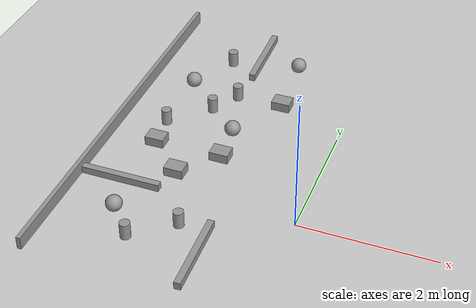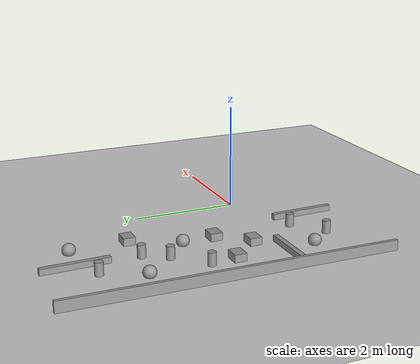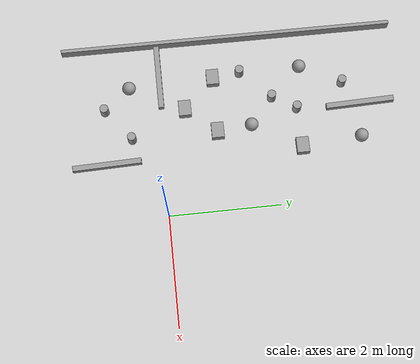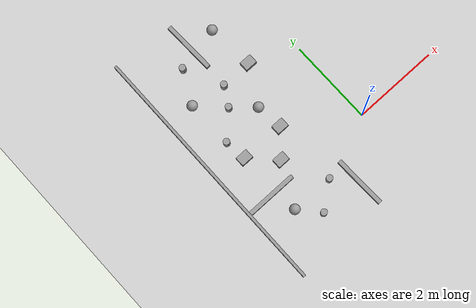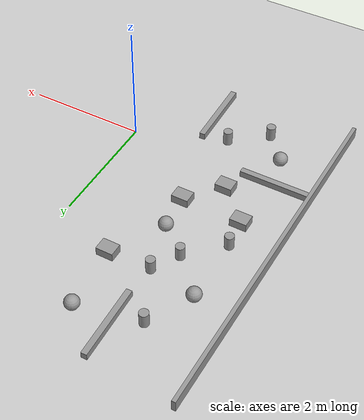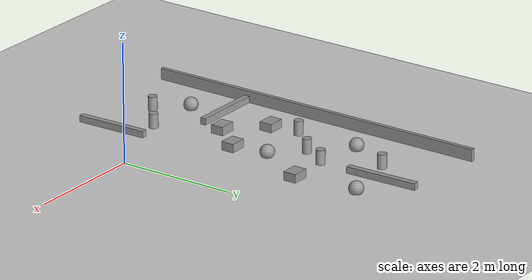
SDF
<sdf version="1.6">
 <world name="default">
  <model name="ground_plane">
   <static>1</static>
   <link name="link">
    <collision name="collision">
     <geometry><plane><normal>0 0 1</normal><size>100 100</size></plane></geometry>
     <surface>
      <contact><collide_bitmask>65535</collide_bitmask></contact>
      <friction><ode><mu>100</mu><mu2>50</mu2></ode></friction>
     </surface>
    </collision>
    <visual name="visual">
     <cast_shadows>0</cast_shadows>
     <geometry><plane><normal>0 0 1</normal><size>100 100</size></plane></geometry>
     <material>
      <script><uri>file://media/materials/scripts/gazebo.material</uri><name>Gazebo/Grey</name></script>
     </material>
    </visual>
   </link>
  </model>
  <model name="wall_clone_clone">
   <link name="wall::link">
    <inertial>
     <mass>1</mass>
     <inertia>
      <ixx>0.166667</ixx>
      <ixy>0</ixy>
      <ixz>0</ixz>
      <iyy>0.166667</iyy>
      <iyz>0</iyz>
      <izz>0.166667</izz>
     </inertia>
    </inertial>
    <visual name="visual">
     <geometry><box><size>6.06185 0.064282 0.203764</size></box></geometry>
     <material>
      <script><name>Gazebo/Grey</name><uri>file://media/materials/scripts/gazebo.material</uri></script>
     </material>
    </visual>
    <collision name="collision">
     <geometry><box><size>6.06185 0.064282 0.203764</size></box></geometry>
     <surface>
      <friction>
       <ode><mu>1</mu><mu2>1</mu2><fdir1>0 0 0</fdir1><slip1>0</slip1><slip2>0</slip2></ode>
       <torsional>
        <coefficient>1</coefficient>
        <patch_radius>0</patch_radius>
        <surface_radius>0</surface_radius>
        <use_patch_radius>1</use_patch_radius>
        <ode><slip>0</slip></ode>
       </torsional>
      </friction>
      <bounce><restitution_coefficient>0</restitution_coefficient><threshold>1e+06</threshold></bounce>
      <contact>
       <collide_without_contact>0</collide_without_contact>
       <collide_without_contact_bitmask>1</collide_without_contact_bitmask>
       <collide_bitmask>1</collide_bitmask>
       <ode>
        <soft_cfm>0</soft_cfm>
        <soft_erp>0.2</soft_erp>
        <kp>1e+13</kp>
        <kd>1</kd>
        <max_vel>0.01</max_vel>
        <min_depth>0</min_depth>
       </ode>
       <bullet>
        <split_impulse>1</split_impulse>
        <split_impulse_penetration_threshold>-0.01</split_impulse_penetration_threshold>
        <soft_cfm>0</soft_cfm>
        <soft_erp>0.2</soft_erp>
        <kp>1e+13</kp>
        <kd>1</kd>
       </bullet>
      </contact>
     </surface>
    </collision>
   </link>
   <static>1</static>
   <pose>-3.24153 1.32469 0.093386 -0.000616 -0.002779 1.56641</pose>
  </model>
  <model name="square_obstacle_clone_4_clone_0">
   <link name="link">
    <inertial>
     <mass>1</mass>
     <inertia>
      <ixx>0.166667</ixx>
      <ixy>0</ixy>
      <ixz>0</ixz>
      <iyy>0.166667</iyy>
      <iyz>0</iyz>
      <izz>0.166667</izz>
     </inertia>
    </inertial>
    <visual name="visual">
     <geometry><box><size>0.287479 0.224054 0.165392</size></box></geometry>
     <material>
      <script><name>Gazebo/Grey</name><uri>file://media/materials/scripts/gazebo.material</uri></script>
     </material>
    </visual>
    <collision name="collision">
     <geometry><box><size>0.287479 0.224054 0.165392</size></box></geometry>
     <surface>
      <friction>
       <ode><mu>1</mu><mu2>1</mu2><fdir1>0 0 0</fdir1><slip1>0</slip1><slip2>0</slip2></ode>
       <torsional>
        <coefficient>1</coefficient>
        <patch_radius>0</patch_radius>
        <surface_radius>0</surface_radius>
        <use_patch_radius>1</use_patch_radius>
        <ode><slip>0</slip></ode>
       </torsional>
      </friction>
      <bounce><restitution_coefficient>0</restitution_coefficient><threshold>1e+06</threshold></bounce>
      <contact>
       <collide_without_contact>0</collide_without_contact>
       <collide_without_contact_bitmask>1</collide_without_contact_bitmask>
       <collide_bitmask>1</collide_bitmask>
       <ode>
        <soft_cfm>0</soft_cfm>
        <soft_erp>0.2</soft_erp>
        <kp>1e+13</kp>
        <kd>1</kd>
        <max_vel>0.01</max_vel>
        <min_depth>0</min_depth>
       </ode>
       <bullet>
        <split_impulse>1</split_impulse>
        <split_impulse_penetration_threshold>-0.01</split_impulse_penetration_threshold>
        <soft_cfm>0</soft_cfm>
        <soft_erp>0.2</soft_erp>
        <kp>1e+13</kp>
        <kd>1</kd>
       </bullet>
      </contact>
     </surface>
    </collision>
   </link>
   <static>1</static>
   <pose>-1.04193 2.50349 0.055043 0 -0 0</pose>
  </model>
  <model name="square_obstacle_clone_4_clone_1">
   <link name="link">
    <inertial>
     <mass>1</mass>
     <inertia>
      <ixx>0.166667</ixx>
      <ixy>0</ixy>
      <ixz>0</ixz>
      <iyy>0.166667</iyy>
      <iyz>0</iyz>
      <izz>0.166667</izz>
     </inertia>
    </inertial>
    <visual name="visual">
     <geometry><box><size>0.287479 0.224054 0.165392</size></box></geometry>
     <material>
      <script><name>Gazebo/Grey</name><uri>file://media/materials/scripts/gazebo.material</uri></script>
     </material>
    </visual>
    <collision name="collision">
     <geometry><box><size>0.287479 0.224054 0.165392</size></box></geometry>
     <surface>
      <friction>
       <ode><mu>1</mu><mu2>1</mu2><fdir1>0 0 0</fdir1><slip1>0</slip1><slip2>0</slip2></ode>
       <torsional>
        <coefficient>1</coefficient>
        <patch_radius>0</patch_radius>
        <surface_radius>0</surface_radius>
        <use_patch_radius>1</use_patch_radius>
        <ode><slip>0</slip></ode>
       </torsional>
      </friction>
      <bounce><restitution_coefficient>0</restitution_coefficient><threshold>1e+06</threshold></bounce>
      <contact>
       <collide_without_contact>0</collide_without_contact>
       <collide_without_contact_bitmask>1</collide_without_contact_bitmask>
       <collide_bitmask>1</collide_bitmask>
       <ode>
        <soft_cfm>0</soft_cfm>
        <soft_erp>0.2</soft_erp>
        <kp>1e+13</kp>
        <kd>1</kd>
        <max_vel>0.01</max_vel>
        <min_depth>0</min_depth>
       </ode>
       <bullet>
        <split_impulse>1</split_impulse>
        <split_impulse_penetration_threshold>-0.01</split_impulse_penetration_threshold>
        <soft_cfm>0</soft_cfm>
        <soft_erp>0.2</soft_erp>
        <kp>1e+13</kp>
        <kd>1</kd>
       </bullet>
      </contact>
     </surface>
    </collision>
   </link>
   <static>1</static>
   <pose>-1.95288 0.456535 0.055043 0 -0 0</pose>
  </model>
  <model name="sphere_obstacles_clone_2_clone_0">
   <link name="sphere_obstacles_clone_2::link">
    <inertial>
     <mass>1</mass>
     <inertia><ixx>0.1</ixx><ixy>0</ixy><ixz>0</ixz><iyy>0.1</iyy><iyz>0</iyz><izz>0.1</izz></inertia>
    </inertial>
    <visual name="visual">
     <geometry><sphere><radius>0.121078</radius></sphere></geometry>
     <material>
      <script><name>Gazebo/Grey</name><uri>file://media/materials/scripts/gazebo.material</uri></script>
     </material>
    </visual>
    <collision name="collision">
     <geometry><sphere><radius>0.121078</radius></sphere></geometry>
     <surface>
      <friction>
       <ode><mu>1</mu><mu2>1</mu2><fdir1>0 0 0</fdir1><slip1>0</slip1><slip2>0</slip2></ode>
       <torsional>
        <coefficient>1</coefficient>
        <patch_radius>0</patch_radius>
        <surface_radius>0</surface_radius>
        <use_patch_radius>1</use_patch_radius>
        <ode><slip>0</slip></ode>
       </torsional>
      </friction>
      <bounce><restitution_coefficient>0</restitution_coefficient><threshold>1e+06</threshold></bounce>
      <contact>
       <collide_without_contact>0</collide_without_contact>
       <collide_without_contact_bitmask>1</collide_without_contact_bitmask>
       <collide_bitmask>1</collide_bitmask>
       <ode>
        <soft_cfm>0</soft_cfm>
        <soft_erp>0.2</soft_erp>
        <kp>1e+13</kp>
        <kd>1</kd>
        <max_vel>0.01</max_vel>
        <min_depth>0</min_depth>
       </ode>
       <bullet>
        <split_impulse>1</split_impulse>
        <split_impulse_penetration_threshold>-0.01</split_impulse_penetration_threshold>
        <soft_cfm>0</soft_cfm>
        <soft_erp>0.2</soft_erp>
        <kp>1e+13</kp>
        <kd>1</kd>
       </bullet>
      </contact>
     </surface>
    </collision>
   </link>
   <static>1</static>
   <pose>-2.56968 2.61576 0.0728 0 -0 0</pose>
  </model>
  <model name="sphere_obstacles_clone_2_clone_4">
   <link name="sphere_obstacles_clone_2::link">
    <inertial>
     <mass>1</mass>
     <inertia><ixx>0.1</ixx><ixy>0</ixy><ixz>0</ixz><iyy>0.1</iyy><iyz>0</iyz><izz>0.1</izz></inertia>
    </inertial>
    <visual name="visual">
     <geometry><sphere><radius>0.121078</radius></sphere></geometry>
     <material>
      <script><name>Gazebo/Grey</name><uri>file://media/materials/scripts/gazebo.material</uri></script>
     </material>
    </visual>
    <collision name="collision">
     <geometry><sphere><radius>0.121078</radius></sphere></geometry>
     <surface>
      <friction>
       <ode><mu>1</mu><mu2>1</mu2><fdir1>0 0 0</fdir1><slip1>0</slip1><slip2>0</slip2></ode>
       <torsional>
        <coefficient>1</coefficient>
        <patch_radius>0</patch_radius>
        <surface_radius>0</surface_radius>
        <use_patch_radius>1</use_patch_radius>
        <ode><slip>0</slip></ode>
       </torsional>
      </friction>
      <bounce><restitution_coefficient>0</restitution_coefficient><threshold>1e+06</threshold></bounce>
      <contact>
       <collide_without_contact>0</collide_without_contact>
       <collide_without_contact_bitmask>1</collide_without_contact_bitmask>
       <collide_bitmask>1</collide_bitmask>
       <ode>
        <soft_cfm>0</soft_cfm>
        <soft_erp>0.2</soft_erp>
        <kp>1e+13</kp>
        <kd>1</kd>
        <max_vel>0.01</max_vel>
        <min_depth>0</min_depth>
       </ode>
       <bullet>
        <split_impulse>1</split_impulse>
        <split_impulse_penetration_threshold>-0.01</split_impulse_penetration_threshold>
        <soft_cfm>0</soft_cfm>
        <soft_erp>0.2</soft_erp>
        <kp>1e+13</kp>
        <kd>1</kd>
       </bullet>
      </contact>
     </surface>
    </collision>
   </link>
   <static>1</static>
   <pose>-2.4503 -0.52455 0.0728 0 -0 0</pose>
  </model>
  <model name="sphere_obstacles_clone_2_clone_clone">
   <link name="sphere_obstacles_clone_2::link">
    <inertial>
     <mass>1</mass>
     <inertia><ixx>0.1</ixx><ixy>0</ixy><ixz>0</ixz><iyy>0.1</iyy><iyz>0</iyz><izz>0.1</izz></inertia>
    </inertial>
    <visual name="visual">
     <geometry><sphere><radius>0.121078</radius></sphere></geometry>
     <material>
      <script><name>Gazebo/Grey</name><uri>file://media/materials/scripts/gazebo.material</uri></script>
     </material>
    </visual>
    <collision name="collision">
     <geometry><sphere><radius>0.121078</radius></sphere></geometry>
     <surface>
      <friction>
       <ode><mu>1</mu><mu2>1</mu2><fdir1>0 0 0</fdir1><slip1>0</slip1><slip2>0</slip2></ode>
       <torsional>
        <coefficient>1</coefficient>
        <patch_radius>0</patch_radius>
        <surface_radius>0</surface_radius>
        <use_patch_radius>1</use_patch_radius>
        <ode><slip>0</slip></ode>
       </torsional>
      </friction>
      <bounce><restitution_coefficient>0</restitution_coefficient><threshold>1e+06</threshold></bounce>
      <contact>
       <collide_without_contact>0</collide_without_contact>
       <collide_without_contact_bitmask>1</collide_without_contact_bitmask>
       <collide_bitmask>1</collide_bitmask>
       <ode>
        <soft_cfm>0</soft_cfm>
        <soft_erp>0.2</soft_erp>
        <kp>1e+13</kp>
        <kd>1</kd>
        <max_vel>0.01</max_vel>
        <min_depth>0</min_depth>
       </ode>
       <bullet>
        <split_impulse>1</split_impulse>
        <split_impulse_penetration_threshold>-0.01</split_impulse_penetration_threshold>
        <soft_cfm>0</soft_cfm>
        <soft_erp>0.2</soft_erp>
        <kp>1e+13</kp>
        <kd>1</kd>
       </bullet>
      </contact>
     </surface>
    </collision>
   </link>
   <static>1</static>
   <pose>-1.12901 3.58744 0.0728 0 -0 0</pose>
  </model>
  <model name="square_obstacle_clone_4_clone_clone_0">
   <link name="link">
    <inertial>
     <mass>1</mass>
     <inertia>
      <ixx>0.166667</ixx>
      <ixy>0</ixy>
      <ixz>0</ixz>
      <iyy>0.166667</iyy>
      <iyz>0</iyz>
      <izz>0.166667</izz>
     </inertia>
    </inertial>
    <visual name="visual">
     <geometry><box><size>0.287479 0.224054 0.165392</size></box></geometry>
     <material>
      <script><name>Gazebo/Grey</name><uri>file://media/materials/scripts/gazebo.material</uri></script>
     </material>
    </visual>
    <collision name="collision">
     <geometry><box><size>0.287479 0.224054 0.165392</size></box></geometry>
     <surface>
      <friction>
       <ode><mu>1</mu><mu2>1</mu2><fdir1>0 0 0</fdir1><slip1>0</slip1><slip2>0</slip2></ode>
       <torsional>
        <coefficient>1</coefficient>
        <patch_radius>0</patch_radius>
        <surface_radius>0</surface_radius>
        <use_patch_radius>1</use_patch_radius>
        <ode><slip>0</slip></ode>
       </torsional>
      </friction>
      <bounce><restitution_coefficient>0</restitution_coefficient><threshold>1e+06</threshold></bounce>
      <contact>
       <collide_without_contact>0</collide_without_contact>
       <collide_without_contact_bitmask>1</collide_without_contact_bitmask>
       <collide_bitmask>1</collide_bitmask>
       <ode>
        <soft_cfm>0</soft_cfm>
        <soft_erp>0.2</soft_erp>
        <kp>1e+13</kp>
        <kd>1</kd>
        <max_vel>0.01</max_vel>
        <min_depth>0</min_depth>
       </ode>
       <bullet>
        <split_impulse>1</split_impulse>
        <split_impulse_penetration_threshold>-0.01</split_impulse_penetration_threshold>
        <soft_cfm>0</soft_cfm>
        <soft_erp>0.2</soft_erp>
        <kp>1e+13</kp>
        <kd>1</kd>
       </bullet>
      </contact>
     </surface>
    </collision>
   </link>
   <static>1</static>
   <pose>-1.47571 1.0085 0.055043 0 -0 0</pose>
  </model>
  <model name="cylinder_obstacles_clone">
   <link name="link">
    <inertial>
     <mass>1</mass>
     <inertia><ixx>0.145833</ixx><ixy>0</ixy><ixz>0</ixz><iyy>0.145833</iyy><iyz>0</iyz><izz>0.125</izz></inertia>
    </inertial>
    <visual name="visual">
     <geometry><cylinder><radius>0.076548</radius><length>0.26008</length></cylinder></geometry>
     <material>
      <script><name>Gazebo/Grey</name><uri>file://media/materials/scripts/gazebo.material</uri></script>
     </material>
    </visual>
    <collision name="collision">
     <geometry><cylinder><radius>0.076548</radius><length>0.26008</length></cylinder></geometry>
     <surface>
      <friction>
       <ode><mu>1</mu><mu2>1</mu2><fdir1>0 0 0</fdir1><slip1>0</slip1><slip2>0</slip2></ode>
       <torsional>
        <coefficient>1</coefficient>
        <patch_radius>0</patch_radius>
        <surface_radius>0</surface_radius>
        <use_patch_radius>1</use_patch_radius>
        <ode><slip>0</slip></ode>
       </torsional>
      </friction>
      <bounce><restitution_coefficient>0</restitution_coefficient><threshold>1e+06</threshold></bounce>
      <contact>
       <collide_without_contact>0</collide_without_contact>
       <collide_without_contact_bitmask>1</collide_without_contact_bitmask>
       <collide_bitmask>1</collide_bitmask>
       <ode>
        <soft_cfm>0</soft_cfm>
        <soft_erp>0.2</soft_erp>
        <kp>1e+13</kp>
        <kd>1</kd>
        <max_vel>0.01</max_vel>
        <min_depth>0</min_depth>
       </ode>
       <bullet>
        <split_impulse>1</split_impulse>
        <split_impulse_penetration_threshold>-0.01</split_impulse_penetration_threshold>
        <soft_cfm>0</soft_cfm>
        <soft_erp>0.2</soft_erp>
        <kp>1e+13</kp>
        <kd>1</kd>
       </bullet>
      </contact>
     </surface>
    </collision>
   </link>
   <static>1</static>
   <pose>-1.4723 -0.541147 0.110032 0 -0 0</pose>
  </model>
  <model name="cylinder_obstacles_clone_1">
   <link name="link">
    <inertial>
     <mass>1</mass>
     <inertia><ixx>0.145833</ixx><ixy>0</ixy><ixz>0</ixz><iyy>0.145833</iyy><iyz>0</iyz><izz>0.125</izz></inertia>
    </inertial>
    <visual name="visual">
     <geometry><cylinder><radius>0.076548</radius><length>0.26008</length></cylinder></geometry>
     <material>
      <script><name>Gazebo/Grey</name><uri>file://media/materials/scripts/gazebo.material</uri></script>
     </material>
    </visual>
    <collision name="collision">
     <geometry><cylinder><radius>0.076548</radius><length>0.26008</length></cylinder></geometry>
     <surface>
      <friction>
       <ode><mu>1</mu><mu2>1</mu2><fdir1>0 0 0</fdir1><slip1>0</slip1><slip2>0</slip2></ode>
       <torsional>
        <coefficient>1</coefficient>
        <patch_radius>0</patch_radius>
        <surface_radius>0</surface_radius>
        <use_patch_radius>1</use_patch_radius>
        <ode><slip>0</slip></ode>
       </torsional>
      </friction>
      <bounce><restitution_coefficient>0</restitution_coefficient><threshold>1e+06</threshold></bounce>
      <contact>
       <collide_without_contact>0</collide_without_contact>
       <collide_without_contact_bitmask>1</collide_without_contact_bitmask>
       <collide_bitmask>1</collide_bitmask>
       <ode>
        <soft_cfm>0</soft_cfm>
        <soft_erp>0.2</soft_erp>
        <kp>1e+13</kp>
        <kd>1</kd>
        <max_vel>0.01</max_vel>
        <min_depth>0</min_depth>
       </ode>
       <bullet>
        <split_impulse>1</split_impulse>
        <split_impulse_penetration_threshold>-0.01</split_impulse_penetration_threshold>
        <soft_cfm>0</soft_cfm>
        <soft_erp>0.2</soft_erp>
        <kp>1e+13</kp>
        <kd>1</kd>
       </bullet>
      </contact>
     </surface>
    </collision>
   </link>
   <static>1</static>
   <pose>-2.05021 -0.994696 0.110032 0 -0 0</pose>
  </model>
  <model name="cylinder_obstacles_clone_2">
   <link name="link">
    <inertial>
     <mass>1</mass>
     <inertia><ixx>0.145833</ixx><ixy>0</ixy><ixz>0</ixz><iyy>0.145833</iyy><iyz>0</iyz><izz>0.125</izz></inertia>
    </inertial>
    <visual name="visual">
     <geometry><cylinder><radius>0.076548</radius><length>0.26008</length></cylinder></geometry>
     <material>
      <script><name>Gazebo/Grey</name><uri>file://media/materials/scripts/gazebo.material</uri></script>
     </material>
    </visual>
    <collision name="collision">
     <geometry><cylinder><radius>0.076548</radius><length>0.26008</length></cylinder></geometry>
     <surface>
      <friction>
       <ode><mu>1</mu><mu2>1</mu2><fdir1>0 0 0</fdir1><slip1>0</slip1><slip2>0</slip2></ode>
       <torsional>
        <coefficient>1</coefficient>
        <patch_radius>0</patch_radius>
        <surface_radius>0</surface_radius>
        <use_patch_radius>1</use_patch_radius>
        <ode><slip>0</slip></ode>
       </torsional>
      </friction>
      <bounce><restitution_coefficient>0</restitution_coefficient><threshold>1e+06</threshold></bounce>
      <contact>
       <collide_without_contact>0</collide_without_contact>
       <collide_without_contact_bitmask>1</collide_without_contact_bitmask>
       <collide_bitmask>1</collide_bitmask>
       <ode>
        <soft_cfm>0</soft_cfm>
        <soft_erp>0.2</soft_erp>
        <kp>1e+13</kp>
        <kd>1</kd>
        <max_vel>0.01</max_vel>
        <min_depth>0</min_depth>
       </ode>
       <bullet>
        <split_impulse>1</split_impulse>
        <split_impulse_penetration_threshold>-0.01</split_impulse_penetration_threshold>
        <soft_cfm>0</soft_cfm>
        <soft_erp>0.2</soft_erp>
        <kp>1e+13</kp>
        <kd>1</kd>
       </bullet>
      </contact>
     </surface>
    </collision>
   </link>
   <static>1</static>
   <pose>-2.0214 2.04818 0.110032 0 -0 0</pose>
  </model>
  <model name="cylinder_obstacles_clone_5">
   <link name="link">
    <inertial>
     <mass>1</mass>
     <inertia><ixx>0.145833</ixx><ixy>0</ixy><ixz>0</ixz><iyy>0.145833</iyy><iyz>0</iyz><izz>0.125</izz></inertia>
    </inertial>
    <visual name="visual">
     <geometry><cylinder><radius>0.076548</radius><length>0.26008</length></cylinder></geometry>
     <material>
      <script><name>Gazebo/Grey</name><uri>file://media/materials/scripts/gazebo.material</uri></script>
     </material>
    </visual>
    <collision name="collision">
     <geometry><cylinder><radius>0.076548</radius><length>0.26008</length></cylinder></geometry>
     <surface>
      <friction>
       <ode><mu>1</mu><mu2>1</mu2><fdir1>0 0 0</fdir1><slip1>0</slip1><slip2>0</slip2></ode>
       <torsional>
        <coefficient>1</coefficient>
        <patch_radius>0</patch_radius>
        <surface_radius>0</surface_radius>
        <use_patch_radius>1</use_patch_radius>
        <ode><slip>0</slip></ode>
       </torsional>
      </friction>
      <bounce><restitution_coefficient>0</restitution_coefficient><threshold>1e+06</threshold></bounce>
      <contact>
       <collide_without_contact>0</collide_without_contact>
       <collide_without_contact_bitmask>1</collide_without_contact_bitmask>
       <collide_bitmask>1</collide_bitmask>
       <ode>
        <soft_cfm>0</soft_cfm>
        <soft_erp>0.2</soft_erp>
        <kp>1e+13</kp>
        <kd>1</kd>
        <max_vel>0.01</max_vel>
        <min_depth>0</min_depth>
       </ode>
       <bullet>
        <split_impulse>1</split_impulse>
        <split_impulse_penetration_threshold>-0.01</split_impulse_penetration_threshold>
        <soft_cfm>0</soft_cfm>
        <soft_erp>0.2</soft_erp>
        <kp>1e+13</kp>
        <kd>1</kd>
       </bullet>
      </contact>
     </surface>
    </collision>
   </link>
   <static>1</static>
   <pose>-2.56056 1.51104 0.110032 0 -0 0</pose>
  </model>
  <model name="cylinder_obstacles_clone_6">
   <link name="link">
    <inertial>
     <mass>1</mass>
     <inertia><ixx>0.145833</ixx><ixy>0</ixy><ixz>0</ixz><iyy>0.145833</iyy><iyz>0</iyz><izz>0.125</izz></inertia>
    </inertial>
    <visual name="visual">
     <geometry><cylinder><radius>0.076548</radius><length>0.26008</length></cylinder></geometry>
     <material>
      <script><name>Gazebo/Grey</name><uri>file://media/materials/scripts/gazebo.material</uri></script>
     </material>
    </visual>
    <collision name="collision">
     <geometry><cylinder><radius>0.076548</radius><length>0.26008</length></cylinder></geometry>
     <surface>
      <friction>
       <ode><mu>1</mu><mu2>1</mu2><fdir1>0 0 0</fdir1><slip1>0</slip1><slip2>0</slip2></ode>
       <torsional>
        <coefficient>1</coefficient>
        <patch_radius>0</patch_radius>
        <surface_radius>0</surface_radius>
        <use_patch_radius>1</use_patch_radius>
        <ode><slip>0</slip></ode>
       </torsional>
      </friction>
      <bounce><restitution_coefficient>0</restitution_coefficient><threshold>1e+06</threshold></bounce>
      <contact>
       <collide_without_contact>0</collide_without_contact>
       <collide_without_contact_bitmask>1</collide_without_contact_bitmask>
       <collide_bitmask>1</collide_bitmask>
       <ode>
        <soft_cfm>0</soft_cfm>
        <soft_erp>0.2</soft_erp>
        <kp>1e+13</kp>
        <kd>1</kd>
        <max_vel>0.01</max_vel>
        <min_depth>0</min_depth>
       </ode>
       <bullet>
        <split_impulse>1</split_impulse>
        <split_impulse_penetration_threshold>-0.01</split_impulse_penetration_threshold>
        <soft_cfm>0</soft_cfm>
        <soft_erp>0.2</soft_erp>
        <kp>1e+13</kp>
        <kd>1</kd>
       </bullet>
      </contact>
     </surface>
    </collision>
   </link>
   <static>1</static>
   <pose>-2.18325 3.35418 0.110032 0 -0 0</pose>
  </model>
  <model name="long_obstacle_clone">
   <link name="link">
    <inertial>
     <mass>1</mass>
     <inertia>
      <ixx>0.166667</ixx>
      <ixy>0</ixy>
      <ixz>0</ixz>
      <iyy>0.166667</iyy>
      <iyz>0</iyz>
      <izz>0.166667</izz>
     </inertia>
    </inertial>
    <visual name="visual">
     <geometry><box><size>1.23514 0.097707 0.121659</size></box></geometry>
     <material>
      <script><name>Gazebo/Grey</name><uri>file://media/materials/scripts/gazebo.material</uri></script>
     </material>
    </visual>
    <collision name="collision">
     <geometry><box><size>1.23514 0.097707 0.121659</size></box></geometry>
     <surface>
      <friction>
       <ode><mu>1</mu><mu2>1</mu2><fdir1>0 0 0</fdir1><slip1>0</slip1><slip2>0</slip2></ode>
       <torsional>
        <coefficient>1</coefficient>
        <patch_radius>0</patch_radius>
        <surface_radius>0</surface_radius>
        <use_patch_radius>1</use_patch_radius>
        <ode><slip>0</slip></ode>
       </torsional>
      </friction>
      <bounce><restitution_coefficient>0</restitution_coefficient><threshold>1e+06</threshold></bounce>
      <contact>
       <collide_without_contact>0</collide_without_contact>
       <collide_without_contact_bitmask>1</collide_without_contact_bitmask>
       <collide_bitmask>1</collide_bitmask>
       <ode>
        <soft_cfm>0</soft_cfm>
        <soft_erp>0.2</soft_erp>
        <kp>1e+13</kp>
        <kd>1</kd>
        <max_vel>0.01</max_vel>
        <min_depth>0</min_depth>
       </ode>
       <bullet>
        <split_impulse>1</split_impulse>
        <split_impulse_penetration_threshold>-0.01</split_impulse_penetration_threshold>
        <soft_cfm>0</soft_cfm>
        <soft_erp>0.2</soft_erp>
        <kp>1e+13</kp>
        <kd>1</kd>
       </bullet>
      </contact>
     </surface>
    </collision>
   </link>
   <static>1</static>
   <pose>-2.6338 0.034636 0.044707 0 -0 0</pose>
  </model>
  <model name="long_obstacle_clone_2">
   <link name="link">
    <inertial>
     <mass>1</mass>
     <inertia>
      <ixx>0.166667</ixx>
      <ixy>0</ixy>
      <ixz>0</ixz>
      <iyy>0.166667</iyy>
      <iyz>0</iyz>
      <izz>0.166667</izz>
     </inertia>
    </inertial>
    <visual name="visual">
     <geometry><box><size>1.23514 0.097707 0.121659</size></box></geometry>
     <material>
      <script><name>Gazebo/Grey</name><uri>file://media/materials/scripts/gazebo.material</uri></script>
     </material>
    </visual>
    <collision name="collision">
     <geometry><box><size>1.23514 0.097707 0.121659</size></box></geometry>
     <surface>
      <friction>
       <ode><mu>1</mu><mu2>1</mu2><fdir1>0 0 0</fdir1><slip1>0</slip1><slip2>0</slip2></ode>
       <torsional>
        <coefficient>1</coefficient>
        <patch_radius>0</patch_radius>
        <surface_radius>0</surface_radius>
        <use_patch_radius>1</use_patch_radius>
        <ode><slip>0</slip></ode>
       </torsional>
      </friction>
      <bounce><restitution_coefficient>0</restitution_coefficient><threshold>1e+06</threshold></bounce>
      <contact>
       <collide_without_contact>0</collide_without_contact>
       <collide_without_contact_bitmask>1</collide_without_contact_bitmask>
       <collide_bitmask>1</collide_bitmask>
       <ode>
        <soft_cfm>0</soft_cfm>
        <soft_erp>0.2</soft_erp>
        <kp>1e+13</kp>
        <kd>1</kd>
        <max_vel>0.01</max_vel>
        <min_depth>0</min_depth>
       </ode>
       <bullet>
        <split_impulse>1</split_impulse>
        <split_impulse_penetration_threshold>-0.01</split_impulse_penetration_threshold>
        <soft_cfm>0</soft_cfm>
        <soft_erp>0.2</soft_erp>
        <kp>1e+13</kp>
        <kd>1</kd>
       </bullet>
      </contact>
     </surface>
    </collision>
   </link>
   <static>1</static>
   <pose>-1.0344 -1.02476 0.044707 0 0 -1.54065</pose>
  </model>
  <model name="long_obstacle_clone_2_clone">
   <link name="link">
    <inertial>
     <mass>1</mass>
     <inertia>
      <ixx>0.166667</ixx>
      <ixy>0</ixy>
      <ixz>0</ixz>
      <iyy>0.166667</iyy>
      <iyz>0</iyz>
      <izz>0.166667</izz>
     </inertia>
    </inertial>
    <visual name="visual">
     <geometry><box><size>1.23514 0.097707 0.121659</size></box></geometry>
     <material>
      <script><name>Gazebo/Grey</name><uri>file://media/materials/scripts/gazebo.material</uri></script>
     </material>
    </visual>
    <collision name="collision">
     <geometry><box><size>1.23514 0.097707 0.121659</size></box></geometry>
     <surface>
      <friction>
       <ode><mu>1</mu><mu2>1</mu2><fdir1>0 0 0</fdir1><slip1>0</slip1><slip2>0</slip2></ode>
       <torsional>
        <coefficient>1</coefficient>
        <patch_radius>0</patch_radius>
        <surface_radius>0</surface_radius>
        <use_patch_radius>1</use_patch_radius>
        <ode><slip>0</slip></ode>
       </torsional>
      </friction>
      <bounce><restitution_coefficient>0</restitution_coefficient><threshold>1e+06</threshold></bounce>
      <contact>
       <collide_without_contact>0</collide_without_contact>
       <collide_without_contact_bitmask>1</collide_without_contact_bitmask>
       <collide_bitmask>1</collide_bitmask>
       <ode>
        <soft_cfm>0</soft_cfm>
        <soft_erp>0.2</soft_erp>
        <kp>1e+13</kp>
        <kd>1</kd>
        <max_vel>0.01</max_vel>
        <min_depth>0</min_depth>
       </ode>
       <bullet>
        <split_impulse>1</split_impulse>
        <split_impulse_penetration_threshold>-0.01</split_impulse_penetration_threshold>
        <soft_cfm>0</soft_cfm>
        <soft_erp>0.2</soft_erp>
        <kp>1e+13</kp>
        <kd>1</kd>
       </bullet>
      </contact>
     </surface>
    </collision>
   </link>
   <static>1</static>
   <pose>-1.75669 3.63902 0.044707 0 0 -1.54065</pose>
  </model>
  <model name="square_obstacle_clone_4_clone_1_clone">
   <link name="link">
    <inertial>
     <mass>1</mass>
     <inertia>
      <ixx>0.166667</ixx>
      <ixy>0</ixy>
      <ixz>0</ixz>
      <iyy>0.166667</iyy>
      <iyz>0</iyz>
      <izz>0.166667</izz>
     </inertia>
    </inertial>
    <visual name="visual">
     <geometry><box><size>0.287479 0.224054 0.165392</size></box></geometry>
     <material>
      <script><name>Gazebo/Grey</name><uri>file://media/materials/scripts/gazebo.material</uri></script>
     </material>
    </visual>
    <collision name="collision">
     <geometry><box><size>0.287479 0.224054 0.165392</size></box></geometry>
     <surface>
      <friction>
       <ode><mu>1</mu><mu2>1</mu2><fdir1>0 0 0</fdir1><slip1>0</slip1><slip2>0</slip2></ode>
       <torsional>
        <coefficient>1</coefficient>
        <patch_radius>0</patch_radius>
        <surface_radius>0</surface_radius>
        <use_patch_radius>1</use_patch_radius>
        <ode><slip>0</slip></ode>
       </torsional>
      </friction>
      <bounce><restitution_coefficient>0</restitution_coefficient><threshold>1e+06</threshold></bounce>
      <contact>
       <collide_without_contact>0</collide_without_contact>
       <collide_without_contact_bitmask>1</collide_without_contact_bitmask>
       <collide_bitmask>1</collide_bitmask>
       <ode>
        <soft_cfm>0</soft_cfm>
        <soft_erp>0.2</soft_erp>
        <kp>1e+13</kp>
        <kd>1</kd>
        <max_vel>0.01</max_vel>
        <min_depth>0</min_depth>
       </ode>
       <bullet>
        <split_impulse>1</split_impulse>
        <split_impulse_penetration_threshold>-0.01</split_impulse_penetration_threshold>
        <soft_cfm>0</soft_cfm>
        <soft_erp>0.2</soft_erp>
        <kp>1e+13</kp>
        <kd>1</kd>
       </bullet>
      </contact>
     </surface>
    </collision>
   </link>
   <static>1</static>
   <pose>-2.50172 1.01272 0.055043 0 -0 0</pose>
  </model>
  <model name="sphere_obstacles_clone_2_clone_3_clone_0">
   <link name="sphere_obstacles_clone_2::link">
    <inertial>
     <mass>1</mass>
     <inertia><ixx>0.1</ixx><ixy>0</ixy><ixz>0</ixz><iyy>0.1</iyy><iyz>0</iyz><izz>0.1</izz></inertia>
    </inertial>
    <visual name="visual">
     <geometry><sphere><radius>0.121078</radius></sphere></geometry>
     <material>
      <script><name>Gazebo/Grey</name><uri>file://media/materials/scripts/gazebo.material</uri></script>
     </material>
    </visual>
    <collision name="collision">
     <geometry><sphere><radius>0.121078</radius></sphere></geometry>
     <surface>
      <friction>
       <ode><mu>1</mu><mu2>1</mu2><fdir1>0 0 0</fdir1><slip1>0</slip1><slip2>0</slip2></ode>
       <torsional>
        <coefficient>1</coefficient>
        <patch_radius>0</patch_radius>
        <surface_radius>0</surface_radius>
        <use_patch_radius>1</use_patch_radius>
        <ode><slip>0</slip></ode>
       </torsional>
      </friction>
      <bounce><restitution_coefficient>0</restitution_coefficient><threshold>1e+06</threshold></bounce>
      <contact>
       <collide_without_contact>0</collide_without_contact>
       <collide_without_contact_bitmask>1</collide_without_contact_bitmask>
       <collide_bitmask>1</collide_bitmask>
       <ode>
        <soft_cfm>0</soft_cfm>
        <soft_erp>0.2</soft_erp>
        <kp>1e+13</kp>
        <kd>1</kd>
        <max_vel>0.01</max_vel>
        <min_depth>0</min_depth>
       </ode>
       <bullet>
        <split_impulse>1</split_impulse>
        <split_impulse_penetration_threshold>-0.01</split_impulse_penetration_threshold>
        <soft_cfm>0</soft_cfm>
        <soft_erp>0.2</soft_erp>
        <kp>1e+13</kp>
        <kd>1</kd>
       </bullet>
      </contact>
     </surface>
    </collision>
   </link>
   <static>1</static>
   <pose>-1.53441 1.63296 0.0728 0 -0 0</pose>
  </model>
  <model name="cylinder_obstacles_clone_3_clone_4">
   <link name="link">
    <inertial>
     <mass>1</mass>
     <inertia><ixx>0.145833</ixx><ixy>0</ixy><ixz>0</ixz><iyy>0.145833</iyy><iyz>0</iyz><izz>0.125</izz></inertia>
    </inertial>
    <visual name="visual">
     <geometry><cylinder><radius>0.076548</radius><length>0.26008</length></cylinder></geometry>
     <material>
      <script><name>Gazebo/Grey</name><uri>file://media/materials/scripts/gazebo.material</uri></script>
     </material>
    </visual>
    <collision name="collision">
     <geometry><cylinder><radius>0.076548</radius><length>0.26008</length></cylinder></geometry>
     <surface>
      <friction>
       <ode><mu>1</mu><mu2>1</mu2><fdir1>0 0 0</fdir1><slip1>0</slip1><slip2>0</slip2></ode>
       <torsional>
        <coefficient>1</coefficient>
        <patch_radius>0</patch_radius>
        <surface_radius>0</surface_radius>
        <use_patch_radius>1</use_patch_radius>
        <ode><slip>0</slip></ode>
       </torsional>
      </friction>
      <bounce><restitution_coefficient>0</restitution_coefficient><threshold>1e+06</threshold></bounce>
      <contact>
       <collide_without_contact>0</collide_without_contact>
       <collide_without_contact_bitmask>1</collide_without_contact_bitmask>
       <collide_bitmask>1</collide_bitmask>
       <ode>
        <soft_cfm>0</soft_cfm>
        <soft_erp>0.2</soft_erp>
        <kp>1e+13</kp>
        <kd>1</kd>
        <max_vel>0.01</max_vel>
        <min_depth>0</min_depth>
       </ode>
       <bullet>
        <split_impulse>1</split_impulse>
        <split_impulse_penetration_threshold>-0.01</split_impulse_penetration_threshold>
        <soft_cfm>0</soft_cfm>
        <soft_erp>0.2</soft_erp>
        <kp>1e+13</kp>
        <kd>1</kd>
       </bullet>
      </contact>
     </surface>
    </collision>
   </link>
   <static>1</static>
   <pose>-1.7677 2.4816 0.110032 0 -0 0</pose>
  </model>
 </world>
</sdf>
